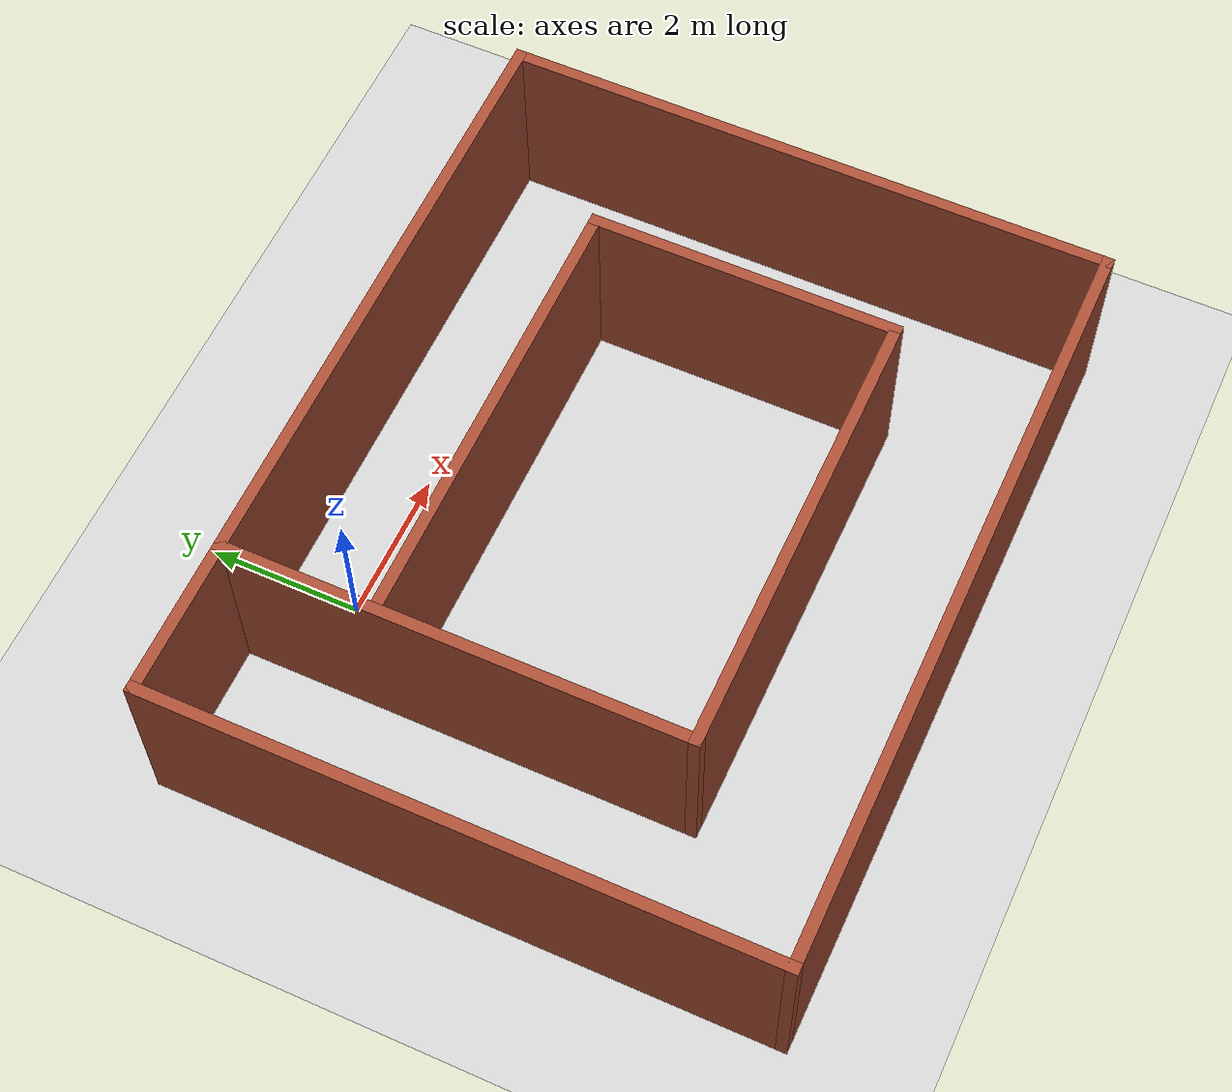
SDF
<sdf version="1.6">
 <world name="default">
  <light name="sun" type="directional">
   <pose>0 0 10 0 -0 0</pose>
   <diffuse>0.8 0.8 0.8 1</diffuse>
   <specular>0.2 0.2 0.2 1</specular>
   <attenuation>
    <range>1000</range>
    <constant>0.9</constant>
    <linear>0.01</linear>
    <quadratic>0.001</quadratic>
   </attenuation>
   <direction>-0.5 0.1 -0.9</direction>
  </light>
  <model name="ground_plane">
   <static>1</static>
   <link name="link">
    <collision name="collision">
     <geometry><plane><normal>0 0 1</normal><size>100 100</size></plane></geometry>
     <surface>
      <contact><collide_bitmask>65535</collide_bitmask></contact>
      <friction><ode><mu>100</mu><mu2>50</mu2></ode></friction>
     </surface>
    </collision>
    <visual name="visual">
     <cast_shadows>0</cast_shadows>
     <geometry><plane><normal>0 0 1</normal><size>100 100</size></plane></geometry>
     <material>
      <script><uri>file://media/materials/scripts/gazebo.material</uri><name>Gazebo/Grey</name></script>
     </material>
    </visual>
   </link>
  </model>
  <gravity>0 0 -9.8</gravity>
  <magnetic_field>6e-06 2.3e-05 -4.2e-05</magnetic_field>
  <atmosphere type="adiabatic"/>
  <physics name="default_physics" default="0" type="ode">
   <max_step_size>0.001</max_step_size>
   <real_time_factor>1</real_time_factor>
   <real_time_update_rate>1000</real_time_update_rate>
  </physics>
  <scene><ambient>0.4 0.4 0.4 1</ambient><background>0.7 0.7 0.7 1</background><shadows>1</shadows></scene>
  <audio><device>default</device></audio>
  <spherical_coordinates>
   <surface_model>EARTH_WGS84</surface_model>
   <latitude_deg>0</latitude_deg>
   <longitude_deg>0</longitude_deg>
   <elevation>0</elevation>
   <heading_deg>0</heading_deg>
  </spherical_coordinates>
  <model name="corridor">
   <pose>2 -3 0 0 -0 0</pose>
   <link name="Wall_10">
    <collision name="Wall_10_Collision">
     <geometry><box><size>10.15 0.15 2.5</size></box></geometry>
     <pose>0 0 1.25 0 -0 0</pose>
    </collision>
    <visual name="Wall_10_Visual">
     <pose>0 0 1.25 0 -0 0</pose>
     <geometry><box><size>10.15 0.15 2.5</size></box></geometry>
     <material>
      <script><uri>file://media/materials/scripts/gazebo.material</uri><name>Gazebo/Bricks</name></script>
      <ambient>1 1 1 1</ambient>
     </material>
     <meta><layer>0</layer></meta>
    </visual>
    <pose>0 4 0 0 -0 0</pose>
   </link>
   <link name="Wall_12">
    <collision name="Wall_12_Collision">
     <geometry><box><size>8.15 0.15 2.5</size></box></geometry>
     <pose>0 0 1.25 0 -0 0</pose>
    </collision>
    <visual name="Wall_12_Visual">
     <pose>0 0 1.25 0 -0 0</pose>
     <geometry><box><size>8.15 0.15 2.5</size></box></geometry>
     <material>
      <script><uri>file://media/materials/scripts/gazebo.material</uri><name>Gazebo/Bricks</name></script>
      <ambient>1 1 1 1</ambient>
     </material>
     <meta><layer>0</layer></meta>
    </visual>
    <pose>5 -0 0 0 -0 -1.5708</pose>
   </link>
   <link name="Wall_13">
    <collision name="Wall_13_Collision">
     <geometry><box><size>10.15 0.15 2.5</size></box></geometry>
     <pose>0 0 1.25 0 -0 0</pose>
    </collision>
    <visual name="Wall_13_Visual">
     <pose>0 0 1.25 0 -0 0</pose>
     <geometry><box><size>10.15 0.15 2.5</size></box></geometry>
     <material>
      <script><uri>file://media/materials/scripts/gazebo.material</uri><name>Gazebo/Bricks</name></script>
      <ambient>1 1 1 1</ambient>
     </material>
     <meta><layer>0</layer></meta>
    </visual>
    <pose>0 -4 0 0 -0 3.14159</pose>
   </link>
   <link name="Wall_14">
    <collision name="Wall_14_Collision">
     <geometry><box><size>8.15 0.15 2.5</size></box></geometry>
     <pose>0 0 1.25 0 -0 0</pose>
    </collision>
    <visual name="Wall_14_Visual">
     <pose>0 0 1.25 0 -0 0</pose>
     <geometry><box><size>8.15 0.15 2.5</size></box></geometry>
     <material>
      <script><uri>file://media/materials/scripts/gazebo.material</uri><name>Gazebo/Bricks</name></script>
      <ambient>1 1 1 1</ambient>
     </material>
     <meta><layer>0</layer></meta>
    </visual>
    <pose>-5 -0 0 0 -0 1.5708</pose>
   </link>
   <link name="Wall_17">
    <collision name="Wall_17_Collision">
     <geometry><box><size>6.15 0.15 2.5</size></box></geometry>
     <pose>0 0 1.25 0 -0 0</pose>
    </collision>
    <visual name="Wall_17_Visual">
     <pose>0 0 1.25 0 -0 0</pose>
     <geometry><box><size>6.15 0.15 2.5</size></box></geometry>
     <material>
      <script><uri>file://media/materials/scripts/gazebo.material</uri><name>Gazebo/Bricks</name></script>
      <ambient>1 1 1 1</ambient>
     </material>
     <meta><layer>0</layer></meta>
    </visual>
    <pose>0 2 0 0 -0 0</pose>
   </link>
   <link name="Wall_18">
    <collision name="Wall_18_Collision">
     <geometry><box><size>4.15 0.15 2.5</size></box></geometry>
     <pose>0 0 1.25 0 -0 0</pose>
    </collision>
    <visual name="Wall_18_Visual">
     <pose>0 0 1.25 0 -0 0</pose>
     <geometry><box><size>4.15 0.15 2.5</size></box></geometry>
     <material>
      <script><uri>file://media/materials/scripts/gazebo.material</uri><name>Gazebo/Bricks</name></script>
      <ambient>1 1 1 1</ambient>
     </material>
     <meta><layer>0</layer></meta>
    </visual>
    <pose>3 -0 0 0 -0 -1.5708</pose>
   </link>
   <link name="Wall_23">
    <collision name="Wall_23_Collision">
     <geometry><box><size>6.15 0.15 2.5</size></box></geometry>
     <pose>0 0 1.25 0 -0 0</pose>
    </collision>
    <visual name="Wall_23_Visual">
     <pose>0 0 1.25 0 -0 0</pose>
     <geometry><box><size>6.15 0.15 2.5</size></box></geometry>
     <material>
      <script><uri>file://media/materials/scripts/gazebo.material</uri><name>Gazebo/Bricks</name></script>
      <ambient>1 1 1 1</ambient>
     </material>
     <meta><layer>0</layer></meta>
    </visual>
    <pose>0 -2 0 0 -0 3.14159</pose>
   </link>
   <link name="Wall_24">
    <collision name="Wall_24_Collision">
     <geometry><box><size>6.15 0.15 2.5</size></box></geometry>
     <pose>0 0 1.25 0 -0 0</pose>
    </collision>
    <visual name="Wall_24_Visual">
     <pose>0 0 1.25 0 -0 0</pose>
     <geometry><box><size>6.15 0.15 2.5</size></box></geometry>
     <material>
      <script><uri>file://media/materials/scripts/gazebo.material</uri><name>Gazebo/Bricks</name></script>
      <ambient>1 1 1 1</ambient>
     </material>
     <meta><layer>0</layer></meta>
    </visual>
    <pose>-3 1 0 0 -0 1.5708</pose>
   </link>
   <static>1</static>
  </model>
 </world>
</sdf>
